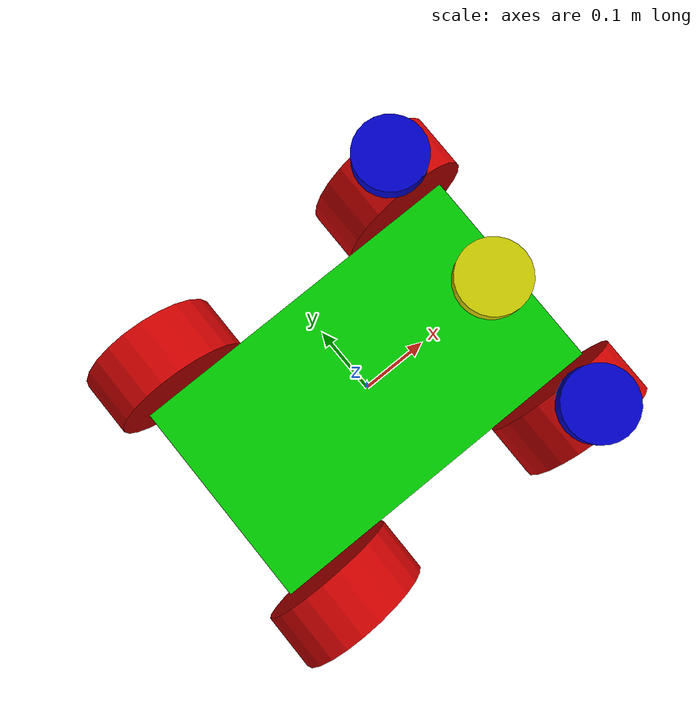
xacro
<?xml version="1.0"?>
<robot name="steer_bot" xmlns:xacro="http://wiki.ros.org/xacro">
    <!-- Include xacro for inertials, materials and wheels -->
    <xacro:include filename="$(find scte_description)/urdf/wheel.xacro"/>

    <xacro:property name="robot_namespace" value="/steer_bot"/>

    <!-- Gazebo plugins -->
    <gazebo>
        <!-- Load ros_control plugin using the steer_bot_hardware_gazebo
        implementation of the hardware_interface::RobotHW -->
        <plugin name="gazebo_ros_control" filename="libgazebo_ros_control.so">
            <robotNamespace>${robot_namespace}</robotNamespace>
            <robotSimType>steer_bot_hardware_gazebo/SteerBotHardwareGazebo</robotSimType>
            <legacyModeNS>false</legacyModeNS>
        </plugin>
    </gazebo>

    <!-- Math constants -->
    <xacro:property name="deg_to_rad" value="0.01745329251994329577"/>

    <!-- Robot base dimensions -->
    <xacro:property name="base_length" value="0.5" />
    <xacro:property name="base_width" value="0.3" />
    <xacro:property name="base_height" value="0.1" />
    <xacro:property name="base_mass" value="5" />

    <!-- Wheel link dimensions -->
    <xacro:property name="wheel_radius" value="0.1" />
    <xacro:property name="wheel_thickness" value="0.08" />
    <xacro:property name="wheel_mass" value="1" />

    <!-- Steering link dimensions -->
    <xacro:property name="steer_radius" value="0.05" />
    <xacro:property name="steer_thickness" value="0.02" />
    <xacro:property name="steer_mass" value="1" />

    <!-- Axle positions -->
    <xacro:property name="axle_offset" value="0.05" />
    <xacro:property name="steer_offset" value="0.02" />

    <!-- Base link -->
    <link name="base_link">
        <visual>
            <origin xyz="0 0 0" rpy="0 0 0"/>
            <geometry>
                <box size="${base_length} ${base_width} ${base_height}"/>
            </geometry>
            <material name="green" />
        </visual>
        <collision>
            <origin xyz="0 0 0" rpy="0 0 0"/>
            <geometry>
                <box size="${base_length} ${base_width} ${base_height}"/>
            </geometry>
        </collision>
        <xacro:solid_cuboid_inertial
                rpy="0 0 0" xyz="0 0 0"
                mass="${base_mass}"
                x="${base_length}" y="${base_width}" z="${base_height}" />
    </link>

    <!-- Front steer and rear wheel joints required for ackermann_steering_controller -->
    <xacro:front_steer
            name="front"
            parent="base"
            steer_radius="${steer_radius}"
            steer_thickness="${steer_thickness}"
            steer_mass="${steer_mass}"
            base_length="${base_length}"
            base_width="${base_width}"
            axle_offset="${axle_offset}"
            steer_height="${wheel_radius+steer_offset}">
    </xacro:front_steer>

    <xacro:rear_wheel
            name="rear"
            parent="base"
            wheel_radius="${wheel_radius/4}"
            wheel_thickness="${wheel_thickness/2}"
            wheel_mass="${wheel_mass/32}">
        <origin xyz="${-base_length/2+axle_offset} 0 0" rpy="${-90 * deg_to_rad} 0 0"/>
    </xacro:rear_wheel>

    <!-- Steerable front wheels -->
    <xacro:front_wheel_lr
            name="front_right"
            parent="base"
            reflect="-1"
            wheel_radius="${wheel_radius}"
            wheel_thickness="${wheel_thickness}"
            wheel_mass="${wheel_mass}"
            steer_radius="${steer_radius}"
            steer_thickness="${steer_thickness}"
            steer_mass="${steer_mass}"
            base_length="${base_length}"
            base_width="${base_width}"
            axle_offset="${axle_offset}"
            steer_height="${wheel_radius+steer_offset}">
    </xacro:front_wheel_lr>
    <xacro:front_wheel_lr
            name="front_left"
            parent="base"
            reflect="1"
            wheel_radius="${wheel_radius}"
            wheel_thickness="${wheel_thickness}"
            wheel_mass="${wheel_mass}"
            steer_radius="${steer_radius}"
            steer_thickness="${steer_thickness}"
            steer_mass="${steer_mass}"
            base_length="${base_length}"
            base_width="${base_width}"
            axle_offset="${axle_offset}"
            steer_height="${wheel_radius+steer_offset}">
    </xacro:front_wheel_lr>

    <!-- Rear wheels -->
    <xacro:rear_wheel_lr
            name="rear_right"
            parent="base"
            wheel_radius="${wheel_radius}"
            wheel_thickness="${wheel_thickness}"
            wheel_mass="${wheel_mass}">
        <origin xyz="${-base_length/2+axle_offset} ${-base_width/2-axle_offset} 0" rpy="${-90 * deg_to_rad} 0 0"/>
    </xacro:rear_wheel_lr>
    <xacro:rear_wheel_lr
            name="rear_left"
            parent="base"
            wheel_radius="${wheel_radius}"
            wheel_thickness="${wheel_thickness}"
            wheel_mass="${wheel_mass}">
        <origin xyz="${-base_length/2+axle_offset} ${+base_width/2+axle_offset} 0" rpy="${-90 * deg_to_rad} 0 0"/>
    </xacro:rear_wheel_lr>

    <!-- Colour -->
    <gazebo reference="base_link">
        <material>Gazebo/Green</material>
    </gazebo>

</robot>

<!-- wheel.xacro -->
<robot name="wheel" xmlns:xacro="http://wiki.ros.org/xacro">
    <!-- Include xacro for materials and inertials -->
    <xacro:include filename="$(find scte_description)/urdf/materials.xacro"/>
    <xacro:include filename="$(find scte_description)/urdf/inertials.xacro"/>

    <!-- Properties -->
    <xacro:property name="steer_effort" value="10.0"/>
    <xacro:property name="steer_velocity" value="5.0"/>
    <xacro:property name="steer_limit_deg" value="45.0"/>

    <!-- Bicycle model front steering link (required for steer_drive_controller) -->
    <xacro:macro name="front_steer"
                 params="
      name
      parent
      steer_radius
      steer_thickness
      steer_mass
      base_length
      base_width
      axle_offset
      steer_height">
        <link name="${name}_steer_link">
            <visual>
                <origin xyz="0 0 0" rpy="0 0 0"/>
                <geometry>
                    <cylinder radius="${steer_radius}" length="${steer_thickness}"/>
                </geometry>
                <material name="yellow" />
            </visual>
            <collision>
                <origin xyz="0 0 0" rpy="0 0 0"/>
                <geometry>
                    <cylinder radius="${steer_radius}" length="${steer_thickness}"/>
                </geometry>
            </collision>
            <xacro:solid_cylinder_inertial
                    rpy="0 0 0" xyz="0 0 0"
                    mass="${steer_mass}"
                    radius="${steer_radius}" length="${steer_thickness}" />
        </link>

        <joint name="${name}_steer_joint" type="revolute">
            <parent link="${parent}_link"/>
            <child link="${name}_steer_link"/>
            <origin xyz="${base_length/2-axle_offset} 0 ${steer_height}" rpy="0 0 0"/>
            <axis xyz="0 0 1"/>
            <limit effort="${steer_effort}"
                   lower="${-180.0 * deg_to_rad}" upper="${180.0 * deg_to_rad}"
                   velocity="${steer_velocity}"/>
        </joint>

        <transmission name="${name}_steer_joint_trans">
            <type>transmission_interface/SimpleTransmission</type>
            <actuator name="${name}_steer_joint_motor">
                <mechanicalReduction>1</mechanicalReduction>
                <hardwareInterface>hardware_interface/PositionJointInterface</hardwareInterface>
            </actuator>
            <joint name="${name}_steer_joint">
                <hardwareInterface>hardware_interface/PositionJointInterface</hardwareInterface>
            </joint>
        </transmission>

        <gazebo reference="${name}_steer_link">
            <material>Gazebo/Yellow</material>
        </gazebo>
    </xacro:macro>

    <!-- Car steering model front (steerable) wheel links (left/right) -->
    <xacro:macro name="front_wheel_lr"
                 params="
      name
      parent
      reflect
      wheel_radius
      wheel_thickness
      wheel_mass
      steer_radius
      steer_thickness
      steer_mass
      base_length
      base_width
      axle_offset
      steer_height">
        <link name="${name}_steer_link">
            <visual>
                <origin xyz="0 0 0" rpy="0 0 0"/>
                <geometry>
                    <cylinder radius="${steer_radius}" length="${steer_thickness}"/>
                </geometry>
                <material name="blue" />
            </visual>
            <collision>
                <origin xyz="0 0 0" rpy="0 0 0"/>
                <geometry>
                    <cylinder radius="${steer_radius}" length="${steer_thickness}"/>
                </geometry>
            </collision>
            <xacro:solid_cylinder_inertial
                    rpy="0 0 0" xyz="0 0 0"
                    mass="${steer_mass}"
                    radius="${steer_radius}" length="${steer_thickness}" />
        </link>

        <joint name="${name}_steer_joint" type="revolute">
            <parent link="${parent}_link"/>
            <child link="${name}_steer_link"/>
            <origin xyz="${base_length/2-axle_offset} ${reflect*(base_width/2+axle_offset)} ${steer_height}" rpy="0 0 0"/>
            <axis xyz="0 0 1"/>
            <limit effort="${steer_effort}"
                   lower="${steer_limit_deg * deg_to_rad * -1.0}" upper="${steer_limit_deg * deg_to_rad}"
                   velocity="${steer_velocity}"/>
        </joint>

        <link name="${name}_wheel_link">
            <visual>
                <origin xyz="0 0 0" rpy="0 0 0"/>
                <geometry>
                    <cylinder radius="${wheel_radius}" length="${wheel_thickness}"/>
                </geometry>
                <material name="red" />
            </visual>
            <collision>
                <origin xyz="0 0 0" rpy="0 0 0"/>
                <geometry>
                    <cylinder radius="${wheel_radius}" length="${wheel_thickness}"/>
                </geometry>
            </collision>
            <xacro:solid_cylinder_inertial
                    rpy="0 0 0" xyz="0 0 0"
                    mass="${wheel_mass}"
                    radius="${wheel_radius}" length="${wheel_thickness}" />
        </link>

        <joint name="${name}_wheel_joint" type="continuous">
            <parent link="${name}_steer_link"/>
            <child link="${name}_wheel_link"/>
            <origin xyz="0 0 ${-steer_height}" rpy="${-90 * deg_to_rad} 0 0"/>
            <axis xyz="0 0 1"/>
        </joint>

        <transmission name="${name}_steer_joint_trans">
            <type>transmission_interface/SimpleTransmission</type>
            <actuator name="${name}_steer_joint_motor">
                <mechanicalReduction>1</mechanicalReduction>
                <hardwareInterface>hardware_interface/PositionJointInterface</hardwareInterface>
            </actuator>
            <joint name="${name}_steer_joint">
                <hardwareInterface>hardware_interface/PositionJointInterface</hardwareInterface>
            </joint>
        </transmission>

        <transmission name="${name}_wheel_joint_trans">
            <type>transmission_interface/SimpleTransmission</type>
            <actuator name="${name}_wheel_joint_motor">
                <mechanicalReduction>1</mechanicalReduction>
                <hardwareInterface>hardware_interface/VelocityJointInterface</hardwareInterface>
            </actuator>
            <joint name="${name}_wheel_joint">
                <hardwareInterface>hardware_interface/VelocityJointInterface</hardwareInterface>
            </joint>
        </transmission>

        <gazebo reference="${name}_steer_link">
            <material>Gazebo/Blue</material>
        </gazebo>

        <gazebo reference="${name}_wheel_link">
            <material>Gazebo/Red</material>
        </gazebo>
    </xacro:macro>

    <!-- Bicycle model rear wheel link (required for steer_drive_controller) -->
    <xacro:macro name="rear_wheel"
                 params="
      name
      parent
      wheel_radius
      wheel_thickness
      wheel_mass
      *origin">
        <link name="${name}_wheel_link">
            <visual>
                <origin xyz="0 0 0" rpy="0 0 0"/>
                <geometry>
                    <cylinder radius="${wheel_radius}" length="${wheel_thickness}"/>
                </geometry>
                <material name="yellow" />
            </visual>
            <collision>
                <origin xyz="0 0 0" rpy="0 0 0"/>
                <geometry>
                    <cylinder radius="${wheel_radius}" length="${wheel_thickness}"/>
                </geometry>
            </collision>
            <xacro:solid_cylinder_inertial
                    rpy="0 0 0" xyz="0 0 0"
                    mass="${wheel_mass}"
                    radius="${wheel_radius}" length="${wheel_thickness}" />
        </link>

        <joint name="${name}_wheel_joint" type="continuous">
            <parent link="${parent}_link"/>
            <child link="${name}_wheel_link"/>
            <xacro:insert_block name="origin"/>
            <axis xyz="0 0 1"/>
        </joint>

        <transmission name="${name}_wheel_joint_trans">
            <type>transmission_interface/SimpleTransmission</type>
            <actuator name="${name}_wheel_joint_motor">
                <mechanicalReduction>1</mechanicalReduction>
                <hardwareInterface>hardware_interface/VelocityJointInterface</hardwareInterface>
            </actuator>
            <joint name="${name}_wheel_joint">
                <hardwareInterface>hardware_interface/VelocityJointInterface</hardwareInterface>
            </joint>
        </transmission>

        <gazebo reference="${name}_wheel_link">
            <material>Gazebo/Yellow</material>
        </gazebo>
    </xacro:macro>

    <!-- Bicycle model front wheel link (passive - no transmission) -->
    <xacro:macro name="front_wheel"
                 params="
      name
      parent
      wheel_radius
      wheel_thickness
      wheel_mass
      *origin">
        <link name="${name}_wheel_link">
            <visual>
                <origin xyz="0 0 0" rpy="0 0 0"/>
                <geometry>
                    <cylinder radius="${wheel_radius}" length="${wheel_thickness}"/>
                </geometry>
                <material name="yellow" />
            </visual>
            <collision>
                <origin xyz="0 0 0" rpy="0 0 0"/>
                <geometry>
                    <cylinder radius="${wheel_radius}" length="${wheel_thickness}"/>
                </geometry>
            </collision>
            <xacro:solid_cylinder_inertial
                    rpy="0 0 0" xyz="0 0 0"
                    mass="${wheel_mass}"
                    radius="${wheel_radius}" length="${wheel_thickness}" />
        </link>

        <joint name="${name}_wheel_joint" type="continuous">
            <parent link="${parent}_link"/>
            <child link="${name}_wheel_link"/>
            <xacro:insert_block name="origin"/>
            <axis xyz="0 0 1"/>
        </joint>

        <gazebo reference="${name}_wheel_link">
            <material>Gazebo/Yellow</material>
        </gazebo>

        <gazebo reference="${name}_wheel_joint">
            <provideFeedback>true</provideFeedback>
        </gazebo>
    </xacro:macro>

    <!-- Car steering model rear wheel links (left/right) -->
    <xacro:macro name="rear_wheel_lr"
                 params="
      name
      parent
      wheel_radius
      wheel_thickness
      wheel_mass
      *origin">
        <link name="${name}_wheel_link">
            <visual>
                <origin xyz="0 0 0" rpy="0 0 0"/>
                <geometry>
                    <cylinder radius="${wheel_radius}" length="${wheel_thickness}"/>
                </geometry>
                <material name="red" />
            </visual>
            <collision>
                <origin xyz="0 0 0" rpy="0 0 0"/>
                <geometry>
                    <cylinder radius="${wheel_radius}" length="${wheel_thickness}"/>
                </geometry>
            </collision>
            <xacro:solid_cylinder_inertial
                    rpy="0 0 0" xyz="0 0 0"
                    mass="${wheel_mass}"
                    radius="${wheel_radius}" length="${wheel_thickness}" />
        </link>

        <joint name="${name}_wheel_joint" type="continuous">
            <parent link="${parent}_link"/>
            <child link="${name}_wheel_link"/>
            <xacro:insert_block name="origin"/>
            <axis xyz="0 0 1"/>
        </joint>

        <transmission name="${name}_wheel_joint_trans">
            <type>transmission_interface/SimpleTransmission</type>
            <actuator name="${name}_wheel_joint_motor">
                <mechanicalReduction>1</mechanicalReduction>
                <hardwareInterface>hardware_interface/VelocityJointInterface</hardwareInterface>
            </actuator>
            <joint name="${name}_wheel_joint">
                <hardwareInterface>hardware_interface/VelocityJointInterface</hardwareInterface>
            </joint>
        </transmission>

        <gazebo reference="${name}_wheel_link">
            <material>Gazebo/Red</material>
        </gazebo>
    </xacro:macro>
</robot>

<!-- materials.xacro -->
<!--  xacro macros for robot materials.
 -->
<robot name="materials" xmlns:xacro="http://wiki.ros.org/xacro">
    <material name="red">
        <color rgba="0.8 0 0 1"/>
    </material>

    <material name="green">
        <color rgba="0 0.8 0 1"/>
    </material>

    <material name="blue">
        <color rgba="0 0 0.8 1"/>
    </material>

    <material name="yellow">
        <color rgba="0.8 0.8 0 1"/>
    </material>

    <material name="orange">
        <color rgba="0.8 0.25 0 1"/>
    </material>

    <material name="black">
        <color rgba="0 0 0 1"/>
    </material>

    <material name="dark_gray">
        <color rgba="0.5 0.5 0.5 1"/>
    </material>

    <material name="gray">
        <color rgba="0.753 0.753 0.753 1"/>
    </material>

    <material name="silver">
        <color rgba="0.88 0.88 0.88 1"/>
    </material>

    <material name="white">
        <color rgba="1 1 1 1"/>
    </material>
</robot>

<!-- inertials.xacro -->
<!--  xacro macros for inertials.
    Define xacro macros for math constants and inertials:

    - solid cuboid
    - solid cylinder
    - null (a placeholder inertial for logical link elements)
 -->
<robot name="inertials" xmlns:xacro="http://wiki.ros.org/xacro">

    <!-- Math constants -->
    <xacro:property name="math_pi"        value="3.141592653589793" />
    <xacro:property name="math_pi_over_2" value="1.5707963267948966" />
    <xacro:property name="math_pi_over_4" value="0.785398163397448" />

    <!-- Inertial for solid cuboid with dimensions x y z  -->
    <xacro:macro name="solid_cuboid_inertial" params="rpy xyz mass x y z">
        <inertial>
            <origin rpy="${rpy}" xyz="${xyz}"/>
            <mass value="${mass}" />
            <inertia
                    ixx="${mass * (y * y + z * z) / 12.0}" ixy="0.0" ixz="0.0"
                    iyy="${mass * (x * x + z * z) / 12.0}" iyz="0.0"
                    izz="${mass * (x * x + y * y) / 12.0}" />
        </inertial>
    </xacro:macro>

    <!-- Inertial for solid cylinder with radius and length aligned to z-axis  -->
    <xacro:macro name="solid_cylinder_inertial" params="rpy xyz mass radius length">
        <inertial>
            <origin rpy="${rpy}" xyz="${xyz}"/>
            <mass value="${mass}" />
            <inertia
                    ixx="${mass * (3.0 * radius * radius + length * length) / 12.0}" ixy="0.0" ixz="0.0"
                    iyy="${mass * (3.0 * radius * radius + length * length) / 12.0}" iyz="0.0"
                    izz="${mass * (radius * radius) / 2.0}" />
        </inertial>
    </xacro:macro>

    <!-- A null inertial - used in placeholder links to esure the model will work in Gazebo -->
    <xacro:macro name="null_inertial">
        <inertial>
            <mass value="0.001"/>
            <inertia ixx="0.001" ixy="0" ixz="0" iyy="0.001" iyz="0" izz="0.001"/>
        </inertial>
    </xacro:macro>
</robot>
